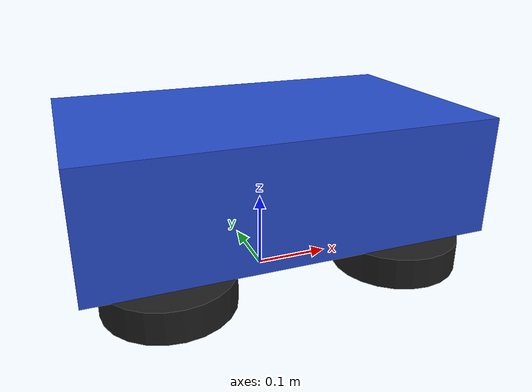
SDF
<?xml version="1.0"?>
<sdf version="1.7">
  <model name="ree_explorer_robot">

    <!-- Châssis principal -->
    <link name="chassis">
      <pose>0 0 0.15 0 0 0</pose>
      <collision name="collision">
        <geometry>
          <box>
            <size>0.5 0.3 0.15</size>
          </box>
        </geometry>
        <surface>
          <friction>
            <ode>
              <mu>100</mu>
              <mu2>50</mu2>
            </ode>
          </friction>
        </surface>
      </collision>
      <visual name="visual">
        <geometry>
          <box>
            <size>0.5 0.3 0.15</size>
          </box>
        </geometry>
        <material>
          <script>
            <uri>file://media/materials/scripts/gazebo.material</uri>
            <name>Gazebo/Blue</name>
          </script>
        </material>
      </visual>

      <!-- Capteur IMU -->
      <sensor type="imu" name="imu_sensor">
        <always_on>true</always_on>
        <update_rate>100</update_rate>
        <imu>
          <noise>
            <type>gaussian</type>
            <rate>
              <mean>0.0</mean>
              <stddev>0.0002</stddev>
            </rate>
          </noise>
        </imu>
      </sensor>
    </link>

    <!-- Roues -->
    <link name="left_wheel">
      <pose>0.15 0.1 0.05 0 0 0</pose>
      <collision name="collision">
        <geometry>
          <cylinder>
            <radius>0.08</radius>
            <length>0.04</length>
          </cylinder>
        </geometry>
        <surface>
          <friction>
            <ode>
              <mu>100</mu>
              <mu2>50</mu2>
            </ode>
          </friction>
        </surface>
      </collision>
      <visual name="visual">
        <geometry>
          <cylinder>
            <radius>0.08</radius>
            <length>0.04</length>
          </cylinder>
        </geometry>
        <material>
          <script>
            <uri>file://media/materials/scripts/gazebo.material</uri>
            <name>Gazebo/Black</name>
          </script>
        </material>
      </visual>
    </link>

    <link name="right_wheel">
      <pose>0.15 -0.1 0.05 0 0 0</pose>
      <collision name="collision">
        <geometry>
          <cylinder>
            <radius>0.08</radius>
            <length>0.04</length>
          </cylinder>
        </geometry>
        <surface>
          <friction>
            <ode>
              <mu>100</mu>
              <mu2>50</mu2>
            </ode>
          </friction>
        </surface>
      </collision>
      <visual name="visual">
        <geometry>
          <cylinder>
            <radius>0.08</radius>
            <length>0.04</length>
          </cylinder>
        </geometry>
        <material>
          <script>
            <uri>file://media/materials/scripts/gazebo.material</uri>
            <name>Gazebo/Black</name>
          </script>
        </material>
      </visual>
    </link>

    <link name="left_back_wheel">
      <pose>-0.15 0.1 0.05 0 0 0</pose>
      <collision name="collision">
        <geometry>
          <cylinder>
            <radius>0.08</radius>
            <length>0.04</length>
          </cylinder>
        </geometry>
        <surface>
          <friction>
            <ode>
              <mu>100</mu>
              <mu2>50</mu2>
            </ode>
          </friction>
        </surface>
      </collision>
      <visual name="visual">
        <geometry>
          <cylinder>
            <radius>0.08</radius>
            <length>0.04</length>
          </cylinder>
        </geometry>
        <material>
          <script>
            <uri>file://media/materials/scripts/gazebo.material</uri>
            <name>Gazebo/Black</name>
          </script>
        </material>
      </visual>
    </link>

    <link name="right_back_wheel">
      <pose>-0.15 -0.1 0.05 0 0 0</pose>
      <collision name="collision">
        <geometry>
          <cylinder>
            <radius>0.08</radius>
            <length>0.04</length>
          </cylinder>
        </geometry>
        <surface>
          <friction>
            <ode>
              <mu>100</mu>
              <mu2>50</mu2>
            </ode>
          </friction>
        </surface>
      </collision>
      <visual name="visual">
        <geometry>
          <cylinder>
            <radius>0.08</radius>
            <length>0.04</length>
          </cylinder>
        </geometry>
        <material>
          <script>
            <uri>file://media/materials/scripts/gazebo.material</uri>
            <name>Gazebo/Black</name>
          </script>
        </material>
      </visual>
    </link>

    <!-- Joints -->
    <joint type="revolute" name="left_wheel_joint">
      <parent>chassis</parent>
      <child>left_wheel</child>
      <axis>
        <xyz>0 1 0</xyz>
        <limit>
          <lower>-1e+16</lower>
          <upper>1e+16</upper>
        </limit>
      </axis>
    </joint>

    <joint type="revolute" name="right_wheel_joint">
      <parent>chassis</parent>
      <child>right_wheel</child>
      <axis>
        <xyz>0 1 0</xyz>
        <limit>
          <lower>-1e+16</lower>
          <upper>1e+16</upper>
        </limit>
      </axis>
    </joint>

    <joint type="revolute" name="left_back_wheel_joint">
      <parent>chassis</parent>
      <child>left_back_wheel</child>
      <axis>
        <xyz>0 1 0</xyz>
        <limit>
          <lower>-1e+16</lower>
          <upper>1e+16</upper>
        </limit>
      </axis>
    </joint>

    <joint type="revolute" name="right_back_wheel_joint">
      <parent>chassis</parent>
      <child>right_back_wheel</child>
      <axis>
        <xyz>0 1 0</xyz>
        <limit>
          <lower>-1e+16</lower>
          <upper>1e+16</upper>
        </limit>
      </axis>
    </joint>

    <!-- Plugin de contrôle différentiel Gazebo Classic -->
    <plugin name="differential_drive" filename="libgazebo_ros_diff_drive.so">
      <command_topic>cmd_vel</command_topic>
      <odometry_topic>odom</odometry_topic>
      <odometry_frame>odom</odometry_frame>
      <robot_base_frame>chassis</robot_base_frame>
      <publish_odom>true</publish_odom>
      <publish_odom_tf>true</publish_odom_tf>
      <publish_wheel_tf>true</publish_wheel_tf>
      <legacy_mode>false</legacy_mode>
      <update_rate>30</update_rate>
      <left_joint>left_wheel_joint</left_joint>
      <right_joint>right_wheel_joint</right_joint>
      <wheel_separation>0.2</wheel_separation>
      <wheel_diameter>0.16</wheel_diameter>
      <wheel_acceleration>0.5</wheel_acceleration>
      <wheel_torque>10</wheel_torque>
      <odometry_source>world</odometry_source>
    </plugin>

  </model>
</sdf>
